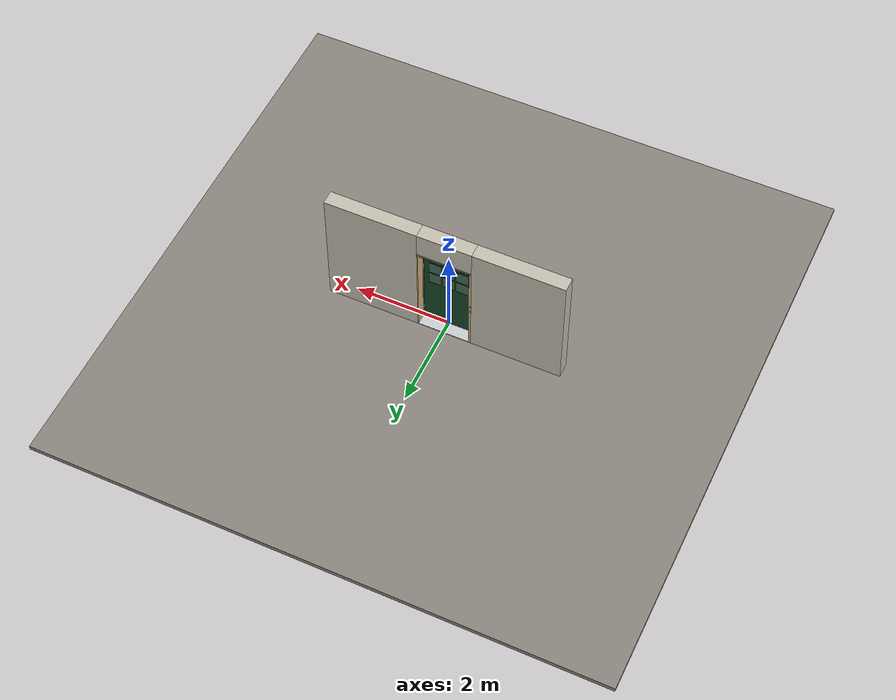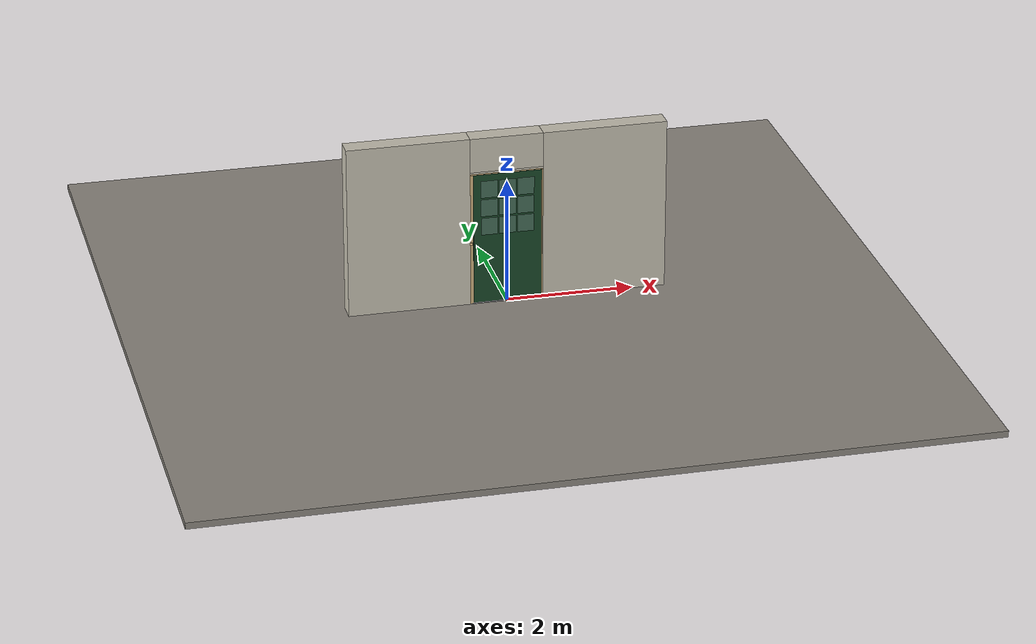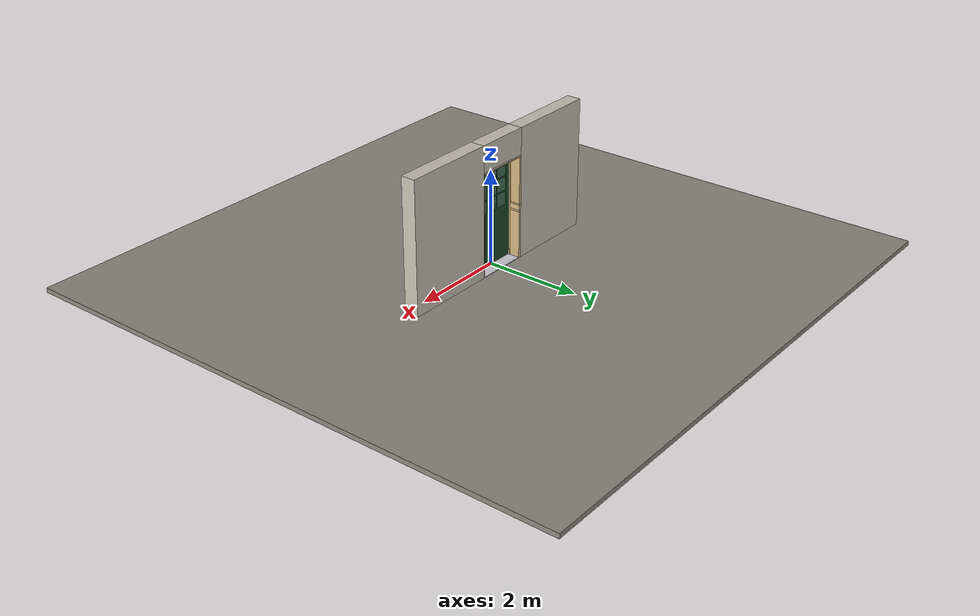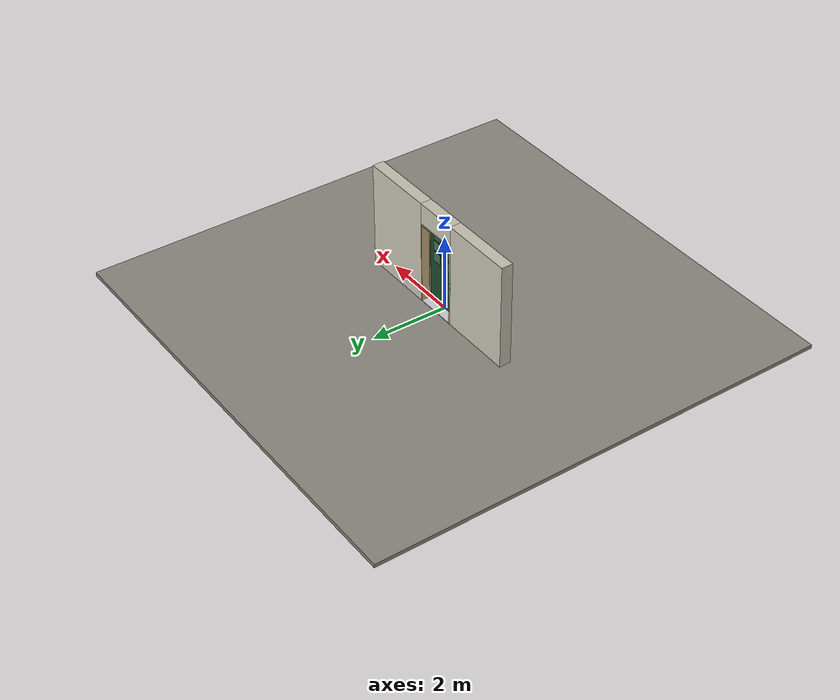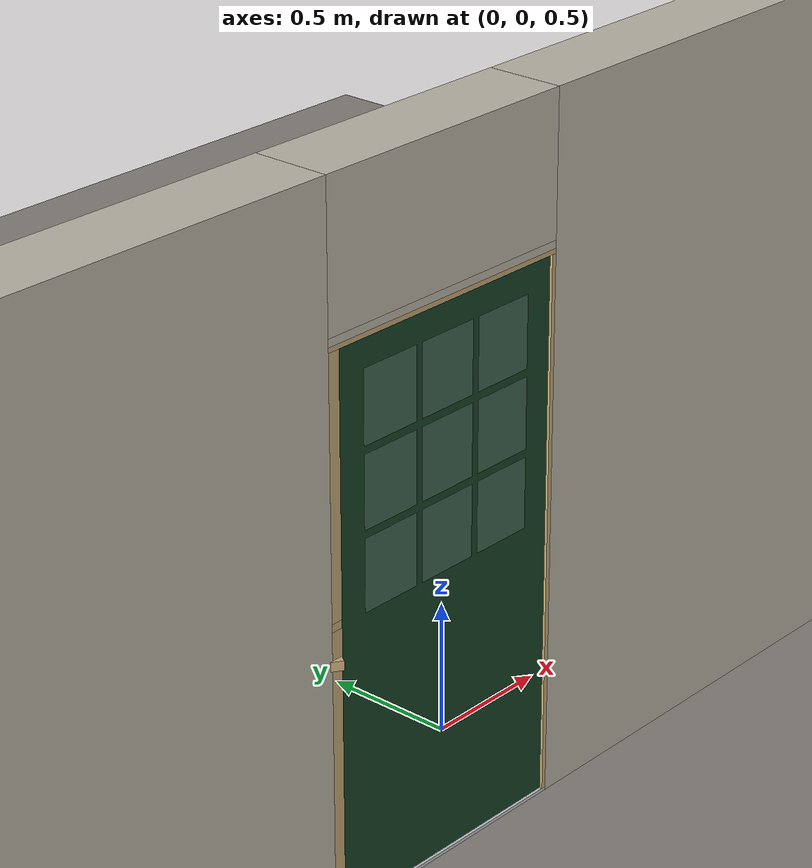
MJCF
<?xml version="1.0" ?>
<mujoco model="db0561_swing_single_minimal">
  <compiler angle="radian" meshdir="../../hardware" texturedir="../../textures" autolimits="true" inertiafromgeom="false"/>
  <option timestep="0.002" integrator="implicitfast" cone="elliptic" impratio="10" noslip_iterations="3">
    <flag multiccd="enable"/>
  </option>
  <size memory="16M"/>
  <default>
    <geom condim="4" solref="0.005 1" solimp="0.95 0.99 0.001"/>
    <joint solreflimit="0.005 1" solimplimit="0.95 0.99 0.001"/>
    <tendon solreflimit="0.005 1"/>
    <equality solref="0.002 1"/>
  </default>
  <visual>
    <headlight ambient="0.4 0.4 0.4" diffuse="0.7 0.7 0.7" specular="0.2 0.2 0.2"/>
    <quality shadowsize="4096"/>
    <map znear="0.01" zfar="60"/>
  </visual>
  <asset>
    <material name="mat_floor" rgba="0.55 0.53 0.5 1" specular="0.2" shininess="0.15" reflectance="0"/>
    <material name="mat_wall" rgba="0.78 0.76 0.7 1" specular="0.2" shininess="0.1" reflectance="0"/>
    <material name="mat_leaf" rgba="0.1 0.28 0.16 1" specular="0.23" shininess="0.47" reflectance="0.02"/>
    <material name="mat_glass" rgba="0.85 0.92 0.95 0.25" specular="0.2" shininess="0.95" reflectance="0.1"/>
    <material name="mat_hinge" rgba="0.65 0.66 0.68 1" specular="0.74" shininess="0.5" reflectance="0.36"/>
    <material name="mat_op_nickel_satin" rgba="0.72 0.7 0.66 1" specular="0.8" shininess="0.65" reflectance="0.4"/>
    <material name="mat_trim" rgba="0.85 0.66 0.3 1" specular="0.8" shininess="0.75" reflectance="0.4"/>
    <material name="mat_keypad" rgba="0.05 0.05 0.05 1" specular="0.38" shininess="0.3" reflectance="0.12"/>
    <material name="mat_key" rgba="0.85 0.85 0.82 1" specular="0.2" shininess="0.5" reflectance="0"/>
    <material name="mat_bolt" rgba="0.85 0.66 0.3 1" specular="0.8" shininess="0.75" reflectance="0.4"/>
    <material name="mat_deadbolt" rgba="0.85 0.66 0.3 1" specular="0.8" shininess="0.75" reflectance="0.4"/>
    <material name="mat_frame" rgba="0.82 0.7 0.5 1" specular="0.2" shininess="0.45" reflectance="0"/>
    <material name="mat_seal" rgba="0.1 0.1 0.1 1" specular="0.2" shininess="0.1" reflectance="0"/>
    <material name="mat_threshold" rgba="0.8 0.81 0.83 1" specular="0.8" shininess="0.6" reflectance="0.4"/>
    <material name="mat_kick" rgba="0.75 0.76 0.77 1" specular="0.8" shininess="0.65" reflectance="0.4"/>
    <material name="mat_peephole" rgba="0.85 0.66 0.3 1" specular="0.8" shininess="0.75" reflectance="0.4"/>
    <material name="mat_numbers" rgba="0.05 0.05 0.05 1" specular="0.38" shininess="0.3" reflectance="0.12"/>
    <material name="mat_transom" rgba="0.85 0.92 0.95 0.25" specular="0.2" shininess="0.95" reflectance="0.1"/>
    <material name="mat_bumper_stop" rgba="0.08 0.08 0.08 1" specular="0.2" shininess="0.1" reflectance="0"/>
    <material name="mat_stop_base" rgba="0.9 0.9 0.92 1" specular="0.8" shininess="0.9" reflectance="0.4"/>
    <texture name="skybox" type="skybox" builtin="gradient" rgb1="0.6 0.7 0.85" rgb2="0.9 0.92 0.95" width="256" height="256"/>
  </asset>
  <worldbody>
    <light name="sun" pos="1.5 -2.5 4" dir="-0.3 0.5 -0.8" directional="true" diffuse="0.8 0.8 0.8" specular="0.3 0.3 0.3" castshadow="true"/>
    <light name="fill" pos="-1.5 2.5 3" dir="0.3 -0.5 -0.7" directional="true" diffuse="0.35 0.35 0.4" castshadow="false"/>
    <camera name="robot_view" pos="0 -2.516812 1.812087" xyaxes="1 0 0 0 0.26963 0.962964" fovy="52"/>
    <camera name="far_view" pos="0 2.758812 1.812087" xyaxes="-1 0 0 0 -0.26963 0.962964" fovy="52"/>
    <camera name="iso" pos="-2.004737 -2.094762 2.234138" xyaxes="0.741536 -0.670913 0 0.242917 0.268487 0.932151" fovy="46"/>
    <camera name="detail_handle" pos="-0.25 -0.679 1.296" xyaxes="0.97561 0.219512 0 -0.070934 0.315262 0.94635" fovy="38"/>
    <geom name="floor" type="box" size="6 6 0.05" pos="0 0 -0.05" material="mat_floor" group="0" contype="1" conaffinity="1" friction="0.8 0.005 0.0001" density="2400"/>
    <geom name="wall_left" type="box" size="0.957 0.15 1.3735" pos="-1.543 0.121 1.3735" material="mat_wall" group="0" contype="1" conaffinity="1" friction="0.6 0.005 0.0001" density="800"/>
    <geom name="wall_right" type="box" size="0.972 0.15 1.3735" pos="1.528 0.121 1.3735" material="mat_wall" group="0" contype="1" conaffinity="1" friction="0.6 0.005 0.0001" density="800"/>
    <geom name="wall_header" type="box" size="0.571 0.15 0.2755" pos="-0.015 0.121 2.4715" material="mat_wall" group="0" contype="1" conaffinity="1" friction="0.6 0.005 0.0001" density="800"/>
    <geom name="jamb_hinge" type="box" size="0.0095 0.15 1.0735" pos="0.5465 0.121 1.0735" material="mat_frame" group="0" contype="1" conaffinity="1" friction="0.6 0.005 0.0001" density="400"/>
    <geom name="strike_1016_wall_n" type="box" size="0.0245 0.13075 0.0183" pos="-0.5615 0.14025 1.016" material="mat_frame" group="0" contype="1" conaffinity="1" friction="0.6 0.005 0.0001" density="400"/>
    <geom name="strike_1016_wall_p" type="box" size="0.0245 0.008 0.0183" pos="-0.5615 -0.0175 1.016" material="mat_frame" group="0" contype="1" conaffinity="1" friction="0.6 0.005 0.0001" density="400"/>
    <geom name="strike_1016_ramp" type="box" size="0.0245 0.018028 0.0183" pos="-0.567385 -0.02691 1.016" quat="0.957092 0 0 -0.289784" material="mat_frame" group="0" contype="1" conaffinity="1" friction="0.12 0.005 0.0001" density="400"/>
    <geom name="strike_1016_back" type="box" size="0.013 0.0095 0.0183" pos="-0.573 0 1.016" material="mat_frame" group="0" contype="1" conaffinity="1" friction="0.6 0.005 0.0001" density="400"/>
    <geom name="strike_1156_wall_n" type="box" size="0.0245 0.13075 0.0155" pos="-0.5615 0.14025 1.156" material="mat_frame" group="0" contype="1" conaffinity="1" friction="0.6 0.005 0.0001" density="400"/>
    <geom name="strike_1156_wall_p" type="box" size="0.0245 0.00975 0.0155" pos="-0.5615 -0.01925 1.156" material="mat_frame" group="0" contype="1" conaffinity="1" friction="0.6 0.005 0.0001" density="400"/>
    <geom name="strike_1156_back" type="box" size="0.0098 0.0095 0.0155" pos="-0.5762 0 1.156" material="mat_frame" group="0" contype="1" conaffinity="1" friction="0.6 0.005 0.0001" density="400"/>
    <geom name="jamb_strike_0" type="box" size="0.0245 0.15 0.49885" pos="-0.5615 0.121 0.49885" material="mat_frame" group="0" contype="1" conaffinity="1" friction="0.6 0.005 0.0001" density="400"/>
    <geom name="jamb_strike_1" type="box" size="0.0245 0.15 0.0531" pos="-0.5615 0.121 1.0874" material="mat_frame" group="0" contype="1" conaffinity="1" friction="0.6 0.005 0.0001" density="400"/>
    <geom name="jamb_strike_2" type="box" size="0.0245 0.15 0.48775" pos="-0.5615 0.121 1.65925" material="mat_frame" group="0" contype="1" conaffinity="1" friction="0.6 0.005 0.0001" density="400"/>
    <geom name="jamb_head" type="box" size="0.571 0.15 0.0095" pos="-0.015 0.121 2.1565" material="mat_frame" group="0" contype="1" conaffinity="1" friction="0.6 0.005 0.0001" density="400"/>
    <geom name="head_stud" type="box" size="0.571 0.15 0.015" pos="-0.015 0.121 2.181" material="mat_wall" group="0" contype="1" conaffinity="1" friction="0.6 0.005 0.0001" density="500"/>
    <geom name="stop_hinge" type="box" size="0.0055 0.016 1.0735" pos="0.5315 0.0385 1.0735" material="mat_frame" group="0" contype="1" conaffinity="1" friction="0.6 0.005 0.0001" density="400"/>
    <geom name="stop_strike" type="box" size="0.0055 0.016 1.0735" pos="-0.5315 0.0385 1.0735" material="mat_frame" group="0" contype="1" conaffinity="1" friction="0.6 0.005 0.0001" density="400"/>
    <geom name="stop_head" type="box" size="0.537 0.016 0.0055" pos="0 0.0385 2.1415" material="mat_frame" group="0" contype="1" conaffinity="1" friction="0.6 0.005 0.0001" density="400"/>
    <geom name="threshold" type="box" size="0.556 0.15 0.0065" pos="0 0.121 0.0065" material="mat_threshold" group="0" contype="1" conaffinity="1" friction="0.5 0.005 0.0001" density="2700"/>
    <site name="approach_point" pos="0 -1.5 0" quat="1 0 0 0" size="0.05" rgba="0.2 0.9 0.2 0.5" group="4"/>
    <site name="goal_point" pos="0 1.5 0" quat="1 0 0 0" size="0.05" rgba="0.2 0.9 0.2 0.5" group="4"/>
    <site name="door_plane_center" pos="0 0 1.0735" quat="1 0 0 0" size="0.02" rgba="0.2 0.9 0.2 0.5" group="4"/>
    <body name="leaf" pos="0.537 0 0">
      <inertial pos="-0.5365 0 1.080698" mass="35.098375" quat="-0.5 0.5 0.5 0.5" diaginertia="3.333944082 13.223425511 16.54604337"/>
      <joint name="leaf_hinge" type="hinge" axis="0 0 1" pos="-0.003 -0.029 0" limited="true" range="0 1.570796" solreflimit="0.02 1" damping="0.54954" frictionloss="1.645251" armature="0.02"/>
      <geom name="leaf_slab" type="box" size="0.5335 0.022 1.063" pos="-0.5365 0 1.08" material="mat_leaf" group="0" contype="1" conaffinity="1" friction="0.4 0.005 0.0001" density="1"/>
      <geom name="leaf_glass_0" type="box" size="0.12871 0.0228 0.13882" pos="-0.24908 0 1.2826" material="mat_glass" group="1" contype="0" conaffinity="0" density="1"/>
      <geom name="leaf_glass_1" type="box" size="0.12871 0.0228 0.13882" pos="-0.5365 0 1.2826" material="mat_glass" group="1" contype="0" conaffinity="0" density="1"/>
      <geom name="leaf_glass_2" type="box" size="0.12871 0.0228 0.13882" pos="-0.82392 0 1.2826" material="mat_glass" group="1" contype="0" conaffinity="0" density="1"/>
      <geom name="leaf_glass_3" type="box" size="0.12871 0.0228 0.13882" pos="-0.24908 0 1.59024" material="mat_glass" group="1" contype="0" conaffinity="0" density="1"/>
      <geom name="leaf_glass_4" type="box" size="0.12871 0.0228 0.13882" pos="-0.5365 0 1.59024" material="mat_glass" group="1" contype="0" conaffinity="0" density="1"/>
      <geom name="leaf_glass_5" type="box" size="0.12871 0.0228 0.13882" pos="-0.82392 0 1.59024" material="mat_glass" group="1" contype="0" conaffinity="0" density="1"/>
      <geom name="leaf_glass_6" type="box" size="0.12871 0.0228 0.13882" pos="-0.24908 0 1.89788" material="mat_glass" group="1" contype="0" conaffinity="0" density="1"/>
      <geom name="leaf_glass_7" type="box" size="0.12871 0.0228 0.13882" pos="-0.5365 0 1.89788" material="mat_glass" group="1" contype="0" conaffinity="0" density="1"/>
      <geom name="leaf_glass_8" type="box" size="0.12871 0.0228 0.13882" pos="-0.82392 0 1.89788" material="mat_glass" group="1" contype="0" conaffinity="0" density="1"/>
      <site name="leaf_edge_mid" pos="-1.07 0 1.063" quat="1 0 0 0" size="0.02" rgba="0.2 0.9 0.2 0.5" group="4"/>
      <body name="leaf_handle" pos="-1 0 1.016">
        <inertial pos="0 0 0" mass="0.01" quat="1 0 0 0" diaginertia="0.000001 0.000001 0.000001"/>
        <joint name="leaf_handle_hinge" type="hinge" axis="0 1 0" limited="true" range="0 0.87" damping="0.141426" frictionloss="0.048" stiffness="0.5" springref="-0.5" armature="0.01"/>
      </body>
      <body name="leaf_latch_bolt" pos="-1.07 0 1.016">
        <inertial pos="0.0055 0 0" mass="0.074627" quat="0.92388 0.382683 0 0" diaginertia="0.000002271 0.000013255 0.000013255"/>
        <joint name="leaf_latch_bolt_slide" type="slide" axis="1 0 0" limited="true" range="0 0.019" damping="2" frictionloss="0.3" stiffness="600" springref="-0.01" armature="0.1"/>
        <geom name="leaf_latch_bolt_capsule" type="capsule" size="0.008 0.0165" pos="0.0055 0 0" quat="0.707107 0 -0.707107 0" material="mat_bolt" group="0" contype="1" conaffinity="1" friction="0.2 0.005 0.0001" density="8500"/>
      </body>
    </body>
  </worldbody>
  <tendon>
    <fixed name="leaf_latch_bolt_coupling" limited="true" range="0 10">
      <joint joint="leaf_latch_bolt_slide" coef="1"/>
      <joint joint="leaf_handle_hinge" coef="-0.023457"/>
    </fixed>
  </tendon>
  <sensor>
    <jointpos name="leaf_hinge_pos" joint="leaf_hinge"/>
    <jointvel name="leaf_hinge_vel" joint="leaf_hinge"/>
    <jointpos name="leaf_handle_hinge_pos" joint="leaf_handle_hinge"/>
    <jointvel name="leaf_handle_hinge_vel" joint="leaf_handle_hinge"/>
    <jointpos name="leaf_latch_bolt_slide_pos" joint="leaf_latch_bolt_slide"/>
    <jointvel name="leaf_latch_bolt_slide_vel" joint="leaf_latch_bolt_slide"/>
  </sensor>
</mujoco>
